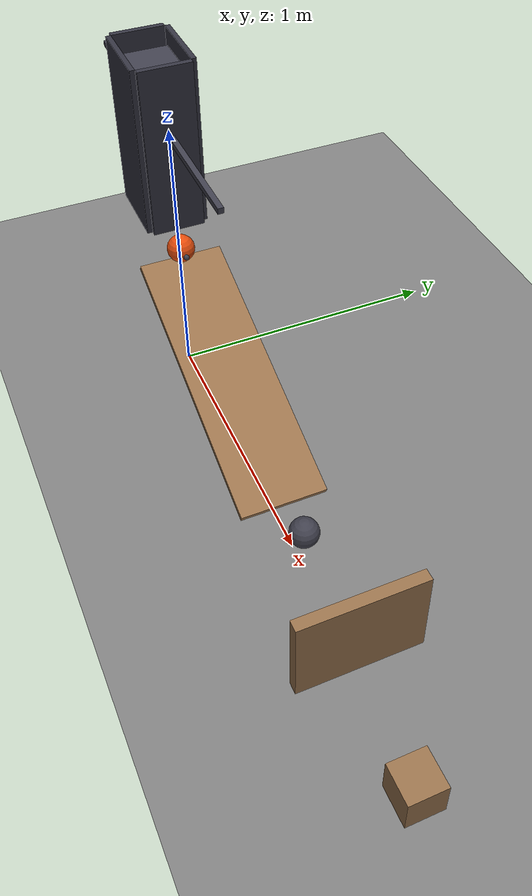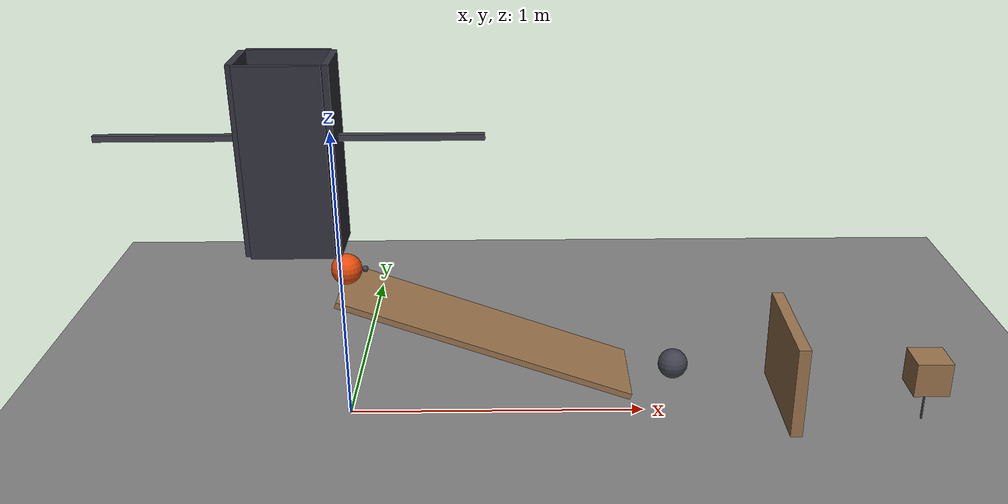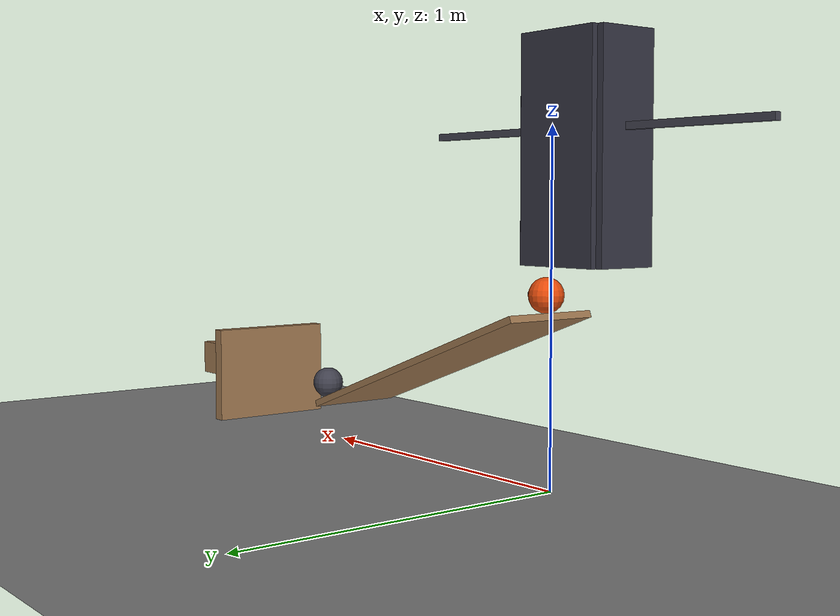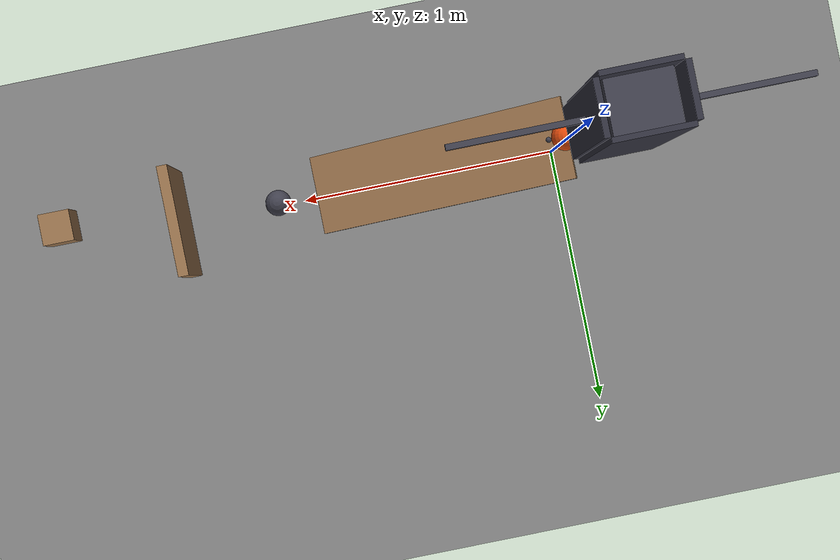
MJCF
<mujoco model="balanced_spring_cart_with_toppling_target">
  <compiler angle="radian"/>
  <option timestep="0.002"/>
  <worldbody>
    <geom name="floor" type="plane" size="6 6 0.1" friction="0.68 0 0"/>
    <body name="ramp1">
      <geom name="ramp1" type="box" pos="0.469846 0 0.311613" size="0.5 0.15 0.01" euler="0 0.349066 0" friction="0.68 0 0" solref="0.01 1" rgba="0.6 0.45 0.3 1"/>
    </body>
    <body name="ball1" pos="0.0205212 0 0.539005">
      <freejoint/>
      <geom name="ball1" type="sphere" pos="0 0 0" size="0.05" mass="0.2" condim="6" friction="0.68 0 0" solref="0.01 1" rgba="0.9 0.3 0.05 1"/>
    </body>
    <body name="ball retainer" pos="0.140521 0 0.139005">
      <joint name="ball_retainer_hinge" type="hinge" pos="0 0 0" axis="0 1 0" limited="true" range="0 0.506145" damping="0.04"/>
      <geom name="ball retainer" type="sphere" pos="-0.06 0 0.4" size="0.01" mass="0.51" friction="0.68 0 0" solref="0.01 1" rgba="0.25 0.25 0.3 1"/>
    </body>
    <body name="cart1" pos="-0.124479 0 1.12471">
      <freejoint/>
      <geom name="cart1" type="box" pos="0 0 0" size="0.11 0.09 0.05" mass="0.5" friction="0.68 0 0" solref="0.01 1" rgba="0.25 0.25 0.3 1"/>
    </body>
    <body name="cart near guide">
      <geom name="cart near guide" type="box" pos="-0.264479 0 0.93" size="0.01 0.092 0.305" friction="0.68 0 0" solref="0.01 1" rgba="0.2 0.2 0.25 1"/>
    </body>
    <body name="cart far guide">
      <geom name="cart far guide" type="box" pos="0.0155212 0 0.93" size="0.01 0.092 0.305" friction="0.68 0 0" solref="0.01 1" rgba="0.2 0.2 0.25 1"/>
    </body>
    <body name="cart left guide">
      <geom name="cart left guide" type="box" pos="-0.124479 0.101 0.93" size="0.13 0.009 0.305" friction="0.68 0 0" solref="0.01 1" rgba="0.2 0.2 0.25 1"/>
    </body>
    <body name="cart right guide">
      <geom name="cart right guide" type="box" pos="-0.124479 -0.101 0.93" size="0.13 0.009 0.305" friction="0.68 0 0" solref="0.01 1" rgba="0.2 0.2 0.25 1"/>
    </body>
    <body name="left pusher arm" pos="-0.724479 0 0.984712">
      <joint name="left_cart_spring_hinge" type="hinge" pos="0 0 0" axis="0 1 0" limited="true" range="-0.321751 0" stiffness="3.6" springref="0" damping="0.04"/>
      <geom name="left pusher arm" type="box" pos="0.316228 0 0" size="0.316228 0.01 0.01" mass="0.04" contype="0" conaffinity="0" rgba="0.25 0.25 0.3 1"/>
      <geom name="left pusher outer tip" type="sphere" pos="0.632456 0.055 0" size="0.01" mass="0.005" friction="0.68 0 0" solref="0.01 1" rgba="0.25 0.25 0.3 1"/>
      <geom name="left pusher inner tip" type="sphere" pos="0.632456 -0.055 0" size="0.01" mass="0.005" friction="0.68 0 0" solref="0.01 1" rgba="0.25 0.25 0.3 1"/>
    </body>
    <body name="right pusher arm" pos="0.475521 0 0.984712">
      <joint name="right_cart_spring_hinge" type="hinge" pos="0 0 0" axis="0 1 0" limited="true" range="0 0.321751" stiffness="3.6" springref="0" damping="0.04"/>
      <geom name="right pusher arm" type="box" pos="-0.316228 0 0" size="0.316228 0.01 0.01" mass="0.04" contype="0" conaffinity="0" rgba="0.25 0.25 0.3 1"/>
      <geom name="right pusher outer tip" type="sphere" pos="-0.632456 0.025 0" size="0.01" mass="0.005" friction="0.68 0 0" solref="0.01 1" rgba="0.25 0.25 0.3 1"/>
      <geom name="right pusher inner tip" type="sphere" pos="-0.632456 -0.025 0" size="0.01" mass="0.005" friction="0.68 0 0" solref="0.01 1" rgba="0.25 0.25 0.3 1"/>
    </body>
    <body name="pendulum1" pos="1.09311 0 -0.32">
      <joint name="pendulum_hinge" type="hinge" pos="0 0 0" axis="0 1 0" limited="true" range="0 0.698132" damping="0.04"/>
      <geom name="pendulum1" type="sphere" pos="0 0 0.5" size="0.05" mass="0.35" friction="0.68 0 0" solref="0.01 1" rgba="0.25 0.25 0.3 1"/>
    </body>
    <body name="door1" pos="1.47951 -0.21 0.18">
      <joint name="door_hinge" type="hinge" pos="0 0 0" axis="0 0 1" limited="true" range="-1.22173 0" damping="0.04"/>
      <geom name="door1" type="box" pos="0 0.21 0" size="0.02 0.21 0.16" mass="0.45" friction="0.68 0 0" solref="0.01 1" rgba="0.6 0.45 0.3 1"/>
    </body>
    <body name="block support">
      <geom name="block support" type="box" pos="1.93642 -0.0712089 0.06" size="0.003 0.003 0.06" friction="0.68 0 0" solref="0.01 1" rgba="0.2 0.2 0.25 1"/>
    </body>
    <body name="block1" pos="1.93642 -0.0712089 0.18">
      <freejoint/>
      <geom name="block1" type="box" pos="0 0 0" size="0.06 0.06 0.06" mass="0.35" friction="0.68 0 0" solref="0.01 1" rgba="0.6 0.45 0.3 1"/>
    </body>
  </worldbody>
  <keyframe>
    <key name="start" qpos="0.0205212 0 0.539005 1 0 0 0 0 -0.124479 0 1.12471 1 0 0 0 -0.321751 0.321751 0 0 1.93642 -0.0712089 0.18 1 0 0 0" qvel="0 0 0 0 0 0 0 0 0 0 0 0 0 0 0 0 0 0 0 0 0 0 0"/>
  </keyframe>
</mujoco>
